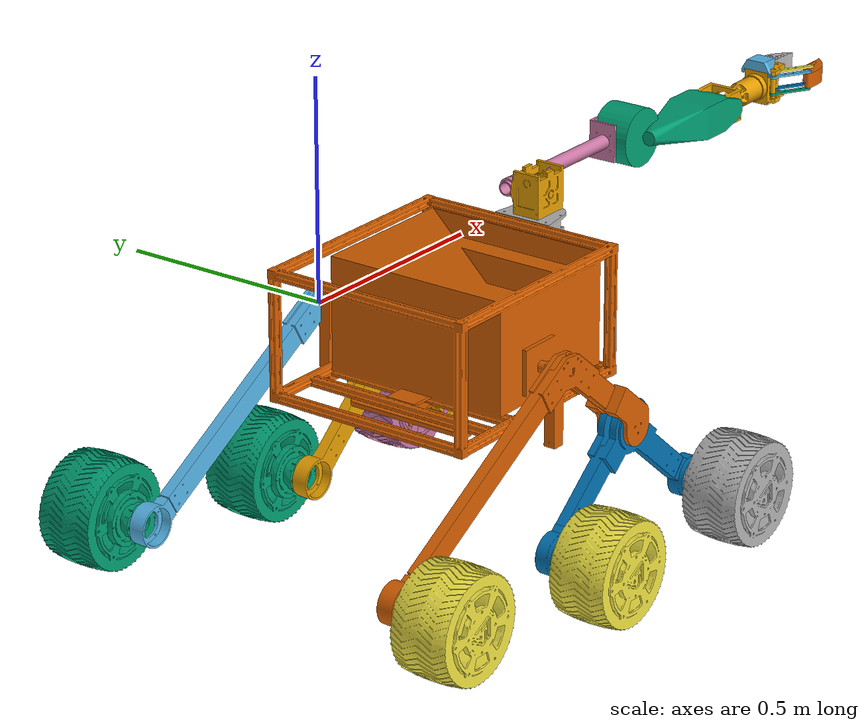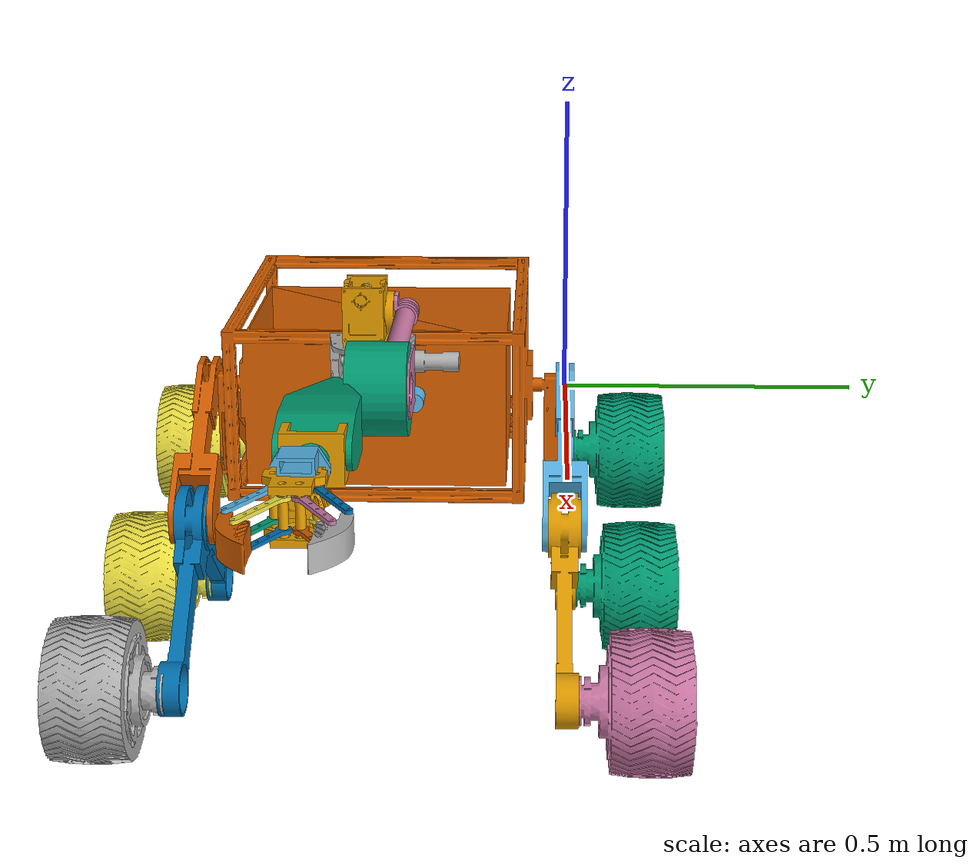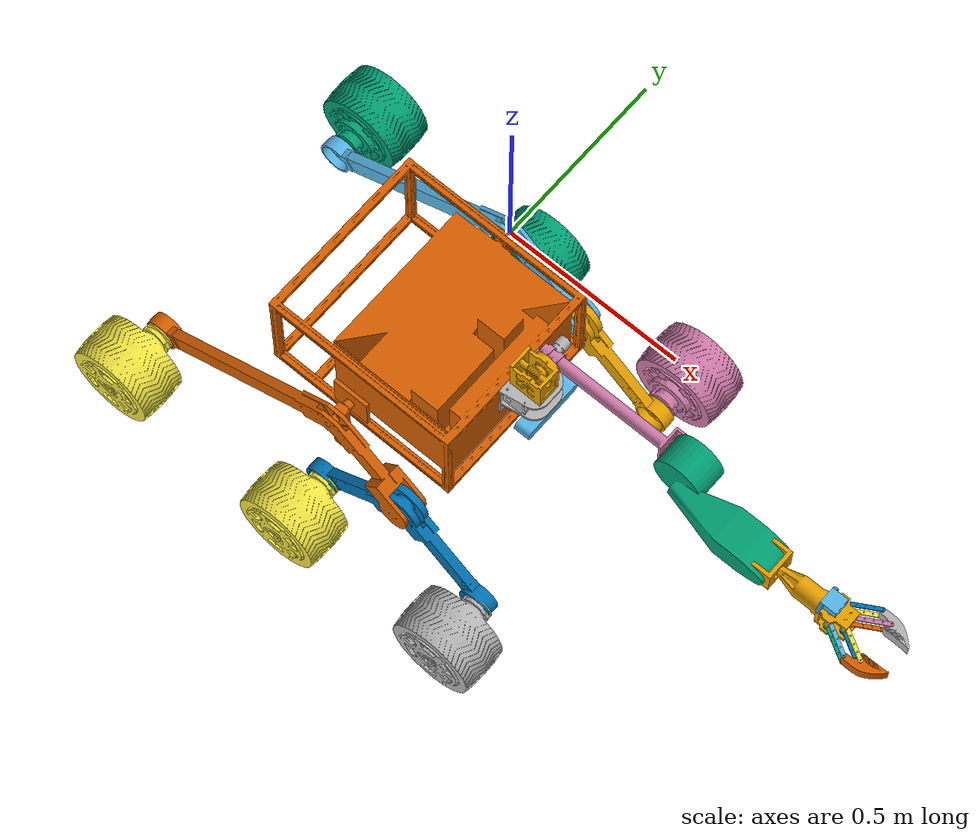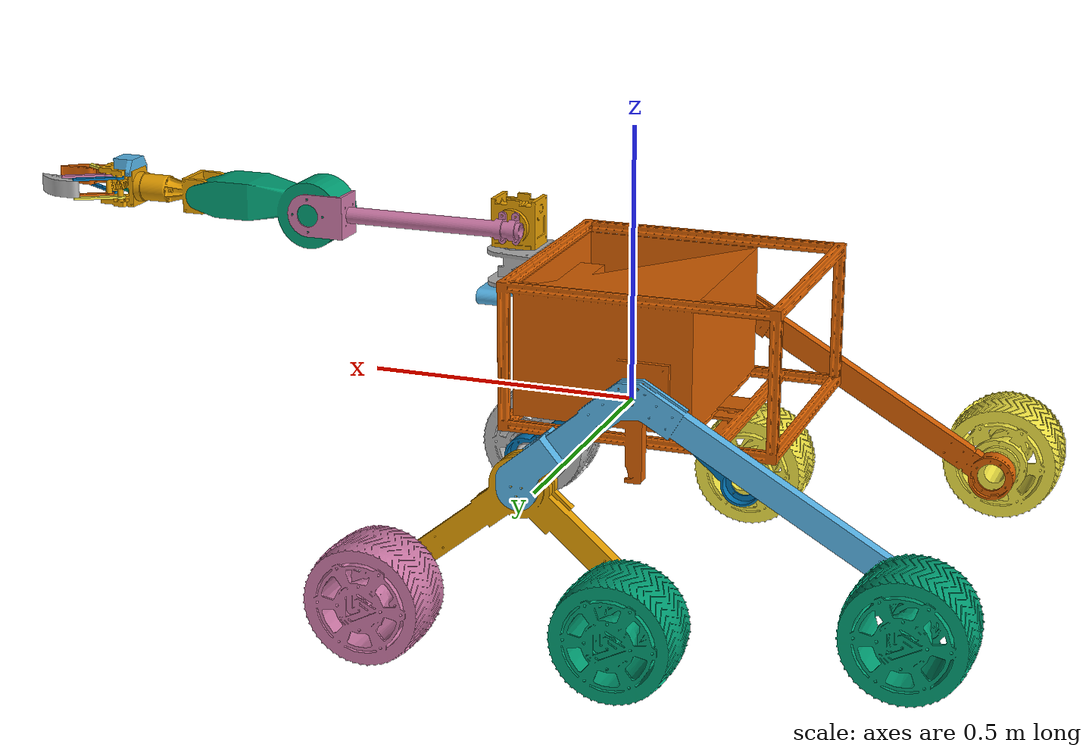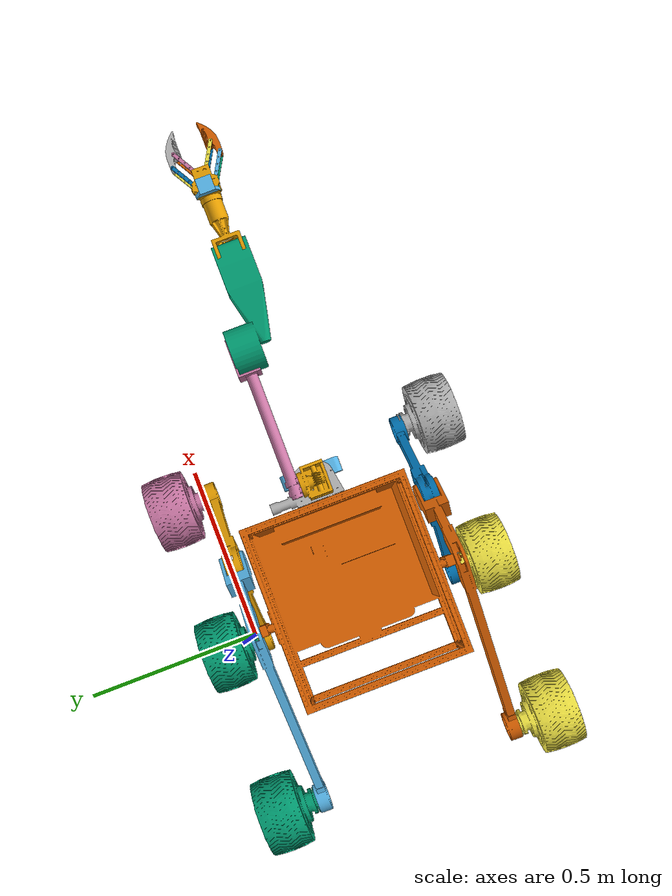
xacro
<?xml version="1.0"?>
<robot xmlns:xacro="http://www.ros.org/wiki/xacro" name="jade">

  <!-- The arm brings its own ZED on the stand, so rover_raw's placeholder chassis ZED is
       turned off (two zed_camera_link links make the URDF invalid). -->
  <xacro:arg name="chassis_zed" default="false" />

  <!-- 1. Global properties & color macros MUST come first -->
  <xacro:include filename="$(find jade_description)/urdf/common_properties.xacro" />

  <!-- 2. Include Sub-robot Xacro files -->
  <xacro:include filename="$(find rover_arm_description)/urdf/rover_arm.xacro" />
  <xacro:include filename="$(find rover_description)/urdf/rover_raw.xacro" />
  <xacro:include filename="$(find jade_description)/urdf/control.xacro" />

  <!-- Fixed Joint between Chassis and Arm Stand -->
  <joint name="stand_link_joint" type="fixed">
    <parent link="chassis_link"/>
    <child link="stand_link"/>
    <origin xyz="0.323 0 0.22" rpy="0 0 0"/>
  </joint>

  <!-- ==================== COLOR ASSIGNMENTS ==================== -->

  <!-- Arm Links -->
  <xacro:gazebo_shiny_aluminum link_name="base_link"/>
  <xacro:gazebo_shiny_aluminum link_name="stand_link"/>
  <xacro:gazebo_shiny_aluminum link_name="shoulder_link"/>
  <xacro:gazebo_shiny_aluminum link_name="elbow_link"/>
  <xacro:gazebo_off_black link_name="wrist_link"/>
  <xacro:gazebo_matte_white link_name="palm_link"/>

  <!-- Gripper & Camera Links -->
  <xacro:gazebo_shiny_aluminum link_name="left_finger_back_bottom_link"/>
  <xacro:gazebo_shiny_aluminum link_name="left_finger_back_top_link"/>
  <xacro:gazebo_shiny_aluminum link_name="left_finger_front_bottom_link"/>
  <xacro:gazebo_shiny_aluminum link_name="left_finger_front_top_link"/>
  <xacro:gazebo_shiny_aluminum link_name="right_finger_back_bottom_link"/>
  <xacro:gazebo_shiny_aluminum link_name="right_finger_back_top_link"/>
  <xacro:gazebo_shiny_aluminum link_name="right_finger_front_bottom_link"/>
  <xacro:gazebo_shiny_aluminum link_name="right_finger_front_top_link"/>
  <xacro:gazebo_off_black link_name="left_finger_link"/>
  <xacro:gazebo_off_black link_name="right_finger_link"/>
  <xacro:gazebo_off_black link_name="camera_mount_link"/>
  <xacro:gazebo_black_shiny link_name="zed_camera_link"/>

  <!-- Chassis & Rocker-Bogie Links -->
  <xacro:gazebo_shiny_aluminum link_name="chassis_link"/>
  <xacro:gazebo_shiny_aluminum link_name="left_bogie_link"/>
  <xacro:gazebo_shiny_aluminum link_name="right_bogie_link"/>
  <xacro:gazebo_shiny_aluminum link_name="left_rocker_link"/>
  <xacro:gazebo_shiny_aluminum link_name="right_rocker_link"/>

  <!-- Wheel Links -->
  <xacro:gazebo_off_black link_name="back_left_wheel_link"/>
  <xacro:gazebo_off_black link_name="middle_left_wheel_link"/>
  <xacro:gazebo_off_black link_name="front_left_wheel_link"/>
  <xacro:gazebo_off_black link_name="back_right_wheel_link"/>
  <xacro:gazebo_off_black link_name="middle_right_wheel_link"/>
  <xacro:gazebo_off_black link_name="front_right_wheel_link"/>

</robot>

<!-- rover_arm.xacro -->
<!--
  Robot: rover_arm_test_version
  Generated by: LinkForge v1.4.3
  https://github.com/arounamounchili/linkforge
  Date: 2026-08-16 16:50:29
-->
<robot xmlns:xacro="http://ros.org/xacro" name="rover_arm_test_version">
  <!-- Links -->
  <link name="base_link">
    <inertial>
      <origin xyz="-0.001028 0.001193 0.047499" rpy="0 0 1.570796" />
      <mass value="1" />
      <inertia ixx="0.001432" ixy="0" ixz="0" iyy="0.001278" iyz="0" izz="0.001206" />
    </inertial>
    <visual>
      <origin xyz="-0.001028 0.001193 0.047499" rpy="0 0 1.570796" />
      <geometry>
        <mesh filename="package://rover_arm_description/urdf/meshes/base_link_visual.obj" />
      </geometry>
    </visual>
    <collision>
      <origin xyz="-0.001028 0.001193 0.047499" rpy="0 0 1.570796" />
      <geometry>
        <box size="0.079456 0.090314 0.094999" />
      </geometry>
    </collision>
  </link>
  <link name="camera_mount_link">
    <inertial>
      <origin xyz="0.02205 -0.0356 0" rpy="0 0 0" />
      <mass value="0.05" />
      <inertia ixx="0.000023" ixy="0" ixz="0" iyy="0.00001" iyz="0" izz="0.000029" />
    </inertial>
    <visual>
      <origin xyz="0.02205 0 0.00615" rpy="0 0 0" />
      <geometry>
        <mesh filename="package://rover_arm_description/urdf/meshes/camera_mount_link_visual.obj" />
      </geometry>
    </visual>
    <collision>
      <origin xyz="0.02205 -0.0356 0" rpy="0 0 0" />
      <geometry>
        <box size="0.044099 0.071199 0.0225" />
      </geometry>
    </collision>
  </link>
  <link name="elbow_link">
    <inertial>
      <origin xyz="0.115487 -0.072527 -0.000852" rpy="0 0 1.570796" />
      <mass value="2.57" />
      <inertia ixx="0.428333" ixy="0" ixz="0" iyy="0.428333" iyz="0" izz="0.428333" />
    </inertial>
    <visual>
      <origin xyz="0.123458 -0.08171 -0.000357" rpy="0 0 1.570796" />
      <geometry>
        <mesh filename="package://rover_arm_description/urdf/meshes/elbow_link_visual.obj" />
      </geometry>
    </visual>
    <collision>
      <origin xyz="0.115487 -0.072527 -0.000852" rpy="0 0 1.570796" />
      <geometry>
        <mesh filename="package://rover_arm_description/urdf/meshes/elbow_link_collision.stl" />
      </geometry>
    </collision>
  </link>
  <link name="left_finger_back_bottom_link">
    <inertial>
      <origin xyz="0.036666 0.020224 0.0025" rpy="0 0 0" />
      <mass value="0.013" />
      <inertia ixx="0.002167" ixy="0" ixz="0" iyy="0.002167" iyz="0" izz="0.002167" />
    </inertial>
    <visual>
      <origin xyz="0.036666 0.020224 0.0025" rpy="0 0 0" />
      <geometry>
        <mesh filename="package://rover_arm_description/urdf/meshes/left_finger_back_bottom_link_visual.obj" />
      </geometry>
    </visual>
    <collision>
      <origin xyz="0.036666 0.020224 0.0025" rpy="0 0 0" />
      <geometry>
        <mesh filename="package://rover_arm_description/urdf/meshes/left_finger_back_bottom_link_collision.stl" />
      </geometry>
    </collision>
  </link>
  <link name="left_finger_back_top_link">
    <inertial>
      <origin xyz="0.036666 0.020224 0.0025" rpy="0 0 0" />
      <mass value="0.013" />
      <inertia ixx="0.002167" ixy="0" ixz="0" iyy="0.002167" iyz="0" izz="0.002167" />
    </inertial>
    <visual>
      <origin xyz="0.036666 0.020224 0.0025" rpy="0 0 0" />
      <geometry>
        <mesh filename="package://rover_arm_description/urdf/meshes/left_finger_back_top_link_visual.obj" />
      </geometry>
    </visual>
    <collision>
      <origin xyz="0.036666 0.020224 0.0025" rpy="0 0 0" />
      <geometry>
        <mesh filename="package://rover_arm_description/urdf/meshes/left_finger_back_top_link_collision.stl" />
      </geometry>
    </collision>
  </link>
  <link name="left_finger_front_bottom_link">
    <inertial>
      <origin xyz="0.036666 0.020224 0.0025" rpy="0 0 0" />
      <mass value="0.013" />
      <inertia ixx="0.002167" ixy="0" ixz="0" iyy="0.002167" iyz="0" izz="0.002167" />
    </inertial>
    <visual>
      <origin xyz="0.036662 0.020224 0.0025" rpy="0 0 0" />
      <geometry>
        <mesh filename="package://rover_arm_description/urdf/meshes/left_finger_front_bottom_link_visual.obj" />
      </geometry>
    </visual>
    <collision>
      <origin xyz="0.036666 0.020224 0.0025" rpy="0 0 0" />
      <geometry>
        <mesh filename="package://rover_arm_description/urdf/meshes/left_finger_front_bottom_link_collision.stl" />
      </geometry>
    </collision>
  </link>
  <link name="left_finger_front_top_link">
    <inertial>
      <origin xyz="0.036666 0.020224 0.0025" rpy="0 0 0" />
      <mass value="0.013" />
      <inertia ixx="0.002167" ixy="0" ixz="0" iyy="0.002167" iyz="0" izz="0.002167" />
    </inertial>
    <visual>
      <origin xyz="0.036662 0.020224 0.0025" rpy="0 0 0" />
      <geometry>
        <mesh filename="package://rover_arm_description/urdf/meshes/left_finger_front_top_link_visual.obj" />
      </geometry>
    </visual>
    <collision>
      <origin xyz="0.036666 0.020224 0.0025" rpy="0 0 0" />
      <geometry>
        <mesh filename="package://rover_arm_description/urdf/meshes/left_finger_front_top_link_collision.stl" />
      </geometry>
    </collision>
  </link>
  <link name="left_finger_link">
    <inertial>
      <origin xyz="0.046263 -0.014314 -0.0175" rpy="0 0 0" />
      <mass value="0.05" />
      <inertia ixx="0.008333" ixy="0" ixz="0" iyy="0.008333" iyz="0" izz="0.008333" />
    </inertial>
    <visual>
      <origin xyz="0.046263 -0.014314 -0.0175" rpy="0 0 0" />
      <geometry>
        <mesh filename="package://rover_arm_description/urdf/meshes/left_finger_link_visual.obj" />
      </geometry>
    </visual>
    <collision>
      <origin xyz="0.046263 -0.014314 -0.0175" rpy="0 0 0" />
      <geometry>
        <mesh filename="package://rover_arm_description/urdf/meshes/left_finger_link_collision.stl" />
      </geometry>
    </collision>
  </link>
  <link name="palm_link">
    <inertial>
      <origin xyz="0.039999 0.003006 0" rpy="0 0 0" />
      <mass value="0.453" />
      <inertia ixx="0.000454" ixy="0" ixz="0" iyy="0.000454" iyz="0" izz="0.000483" />
    </inertial>
    <visual>
      <origin xyz="0.039999 0.003006 0" rpy="0 0 0" />
      <geometry>
        <mesh filename="package://rover_arm_description/urdf/meshes/palm_link_visual.obj" />
      </geometry>
    </visual>
    <collision>
      <origin xyz="0.039999 0.003006 0" rpy="0 0 0" />
      <geometry>
        <box size="0.079999 0.079998 0.074999" />
      </geometry>
    </collision>
  </link>
  <link name="right_finger_back_bottom_link">
    <inertial>
      <origin xyz="0.036666 -0.020224 0.0025" rpy="0 0 0" />
      <mass value="0.013" />
      <inertia ixx="0.002167" ixy="0" ixz="0" iyy="0.002167" iyz="0" izz="0.002167" />
    </inertial>
    <visual>
      <origin xyz="0.036666 -0.020224 0.0025" rpy="0 0 0" />
      <geometry>
        <mesh filename="package://rover_arm_description/urdf/meshes/right_finger_back_bottom_link_visual.obj" />
      </geometry>
    </visual>
    <collision>
      <origin xyz="0.036666 -0.020224 0.0025" rpy="0 0 0" />
      <geometry>
        <mesh filename="package://rover_arm_description/urdf/meshes/right_finger_back_bottom_link_collision.stl" />
      </geometry>
    </collision>
  </link>
  <link name="right_finger_back_top_link">
    <inertial>
      <origin xyz="0.036666 -0.020224 0.0025" rpy="0 0 0" />
      <mass value="0.013" />
      <inertia ixx="0.002167" ixy="0" ixz="0" iyy="0.002167" iyz="0" izz="0.002167" />
    </inertial>
    <visual>
      <origin xyz="0.036666 -0.020224 0.0025" rpy="0 0 0" />
      <geometry>
        <mesh filename="package://rover_arm_description/urdf/meshes/right_finger_back_top_link_visual.obj" />
      </geometry>
    </visual>
    <collision>
      <origin xyz="0.036666 -0.020224 0.0025" rpy="0 0 0" />
      <geometry>
        <mesh filename="package://rover_arm_description/urdf/meshes/right_finger_back_top_link_collision.stl" />
      </geometry>
    </collision>
  </link>
  <link name="right_finger_front_bottom_link">
    <inertial>
      <origin xyz="0.036666 -0.020224 0.0025" rpy="0 0 0" />
      <mass value="0.013" />
      <inertia ixx="0.002167" ixy="0" ixz="0" iyy="0.002167" iyz="0" izz="0.002167" />
    </inertial>
    <visual>
      <origin xyz="0.036666 -0.020224 0.0025" rpy="0 0 0" />
      <geometry>
        <mesh filename="package://rover_arm_description/urdf/meshes/right_finger_front_bottom_link_visual.obj" />
      </geometry>
    </visual>
    <collision>
      <origin xyz="0.036666 -0.020224 0.0025" rpy="0 0 0" />
      <geometry>
        <mesh filename="package://rover_arm_description/urdf/meshes/right_finger_front_bottom_link_collision.stl" />
      </geometry>
    </collision>
  </link>
  <link name="right_finger_front_top_link">
    <inertial>
      <origin xyz="0.036666 -0.020224 0.0025" rpy="0 0 0" />
      <mass value="0.013" />
      <inertia ixx="0.002167" ixy="0" ixz="0" iyy="0.002167" iyz="0" izz="0.002167" />
    </inertial>
    <visual>
      <origin xyz="0.036666 -0.020224 0.0025" rpy="0 0 0" />
      <geometry>
        <mesh filename="package://rover_arm_description/urdf/meshes/right_finger_front_top_link_visual.obj" />
      </geometry>
    </visual>
    <collision>
      <origin xyz="0.036666 -0.020224 0.0025" rpy="0 0 0" />
      <geometry>
        <mesh filename="package://rover_arm_description/urdf/meshes/right_finger_front_top_link_collision.stl" />
      </geometry>
    </collision>
  </link>
  <link name="right_finger_link">
    <inertial>
      <origin xyz="0.046263 0.014314 -0.0175" rpy="0 0 0" />
      <mass value="0.05" />
      <inertia ixx="0.008333" ixy="0" ixz="0" iyy="0.008333" iyz="0" izz="0.008333" />
    </inertial>
    <visual>
      <origin xyz="0.046263 0.014314 -0.0175" rpy="0 0 0" />
      <geometry>
        <mesh filename="package://rover_arm_description/urdf/meshes/right_finger_link_visual.obj" />
      </geometry>
    </visual>
    <collision>
      <origin xyz="0.046263 0.014314 -0.0175" rpy="0 0 0" />
      <geometry>
        <mesh filename="package://rover_arm_description/urdf/meshes/right_finger_link_collision.stl" />
      </geometry>
    </collision>
  </link>
  <link name="shoulder_link">
    <inertial>
      <origin xyz="0.208545 0.020425 0.000072" rpy="0 0 0" />
      <mass value="0.5" />
      <inertia ixx="0.083333" ixy="0" ixz="0" iyy="0.083333" iyz="0" izz="0.083333" />
    </inertial>
    <visual>
      <origin xyz="0.208547 0.0205 0" rpy="0 0 1.570796" />
      <geometry>
        <mesh filename="package://rover_arm_description/urdf/meshes/shoulder_link_visual.obj" />
      </geometry>
    </visual>
    <collision>
      <origin xyz="0.208545 0.020425 0.000072" rpy="0 0 0" />
      <geometry>
        <mesh filename="package://rover_arm_description/urdf/meshes/shoulder_link_collision.stl" />
      </geometry>
    </collision>
  </link>
  <link name="stand_link">
    <inertial>
      <origin xyz="0.000553 0.035798 0.0135" rpy="0 0 1.570796" />
      <mass value="2" />
      <inertia ixx="0.004163" ixy="0" ixz="0" iyy="0.009635" iyz="0" izz="0.009077" />
    </inertial>
    <visual>
      <origin xyz="0.000553 0.035798 0.0135" rpy="0 0 1.570796" />
      <geometry>
        <mesh filename="package://rover_arm_description/urdf/meshes/stand_link_visual.obj" />
      </geometry>
    </visual>
    <collision>
      <origin xyz="0.000553 0.035798 0.0135" rpy="0 0 1.570796" />
      <geometry>
        <box size="0.20892 0.104 0.119" />
      </geometry>
    </collision>
  </link>
  <link name="wrist_link">
    <inertial>
      <origin xyz="0.065296 0 0.000008" rpy="0 0 0" />
      <mass value="0.45" />
      <inertia ixx="0.075" ixy="0" ixz="0" iyy="0.075" iyz="0" izz="0.075" />
    </inertial>
    <visual>
      <origin xyz="0.065296 0 0.000008" rpy="0 0 0" />
      <geometry>
        <mesh filename="package://rover_arm_description/urdf/meshes/wrist_link_visual.obj" />
      </geometry>
    </visual>
    <collision>
      <origin xyz="0.065296 0 0.000008" rpy="0 0 0" />
      <geometry>
        <mesh filename="package://rover_arm_description/urdf/meshes/wrist_link_collision.stl" />
      </geometry>
    </collision>
  </link>
  <link name="zed_camera_link">
    <inertial>
      <origin xyz="-0.02155 0 -0.01515" rpy="0 0 0" />
      <mass value="0.166" />
      <inertia ixx="0.000438" ixy="0" ixz="0" iyy="0.000038" iyz="0" izz="0.000451" />
    </inertial>
    <visual>
      <origin xyz="-0.02155 0 -0.01515" rpy="0 0 0" />
      <geometry>
        <mesh filename="package://rover_arm_description/urdf/meshes/zed_camera_link_visual.obj" />
      </geometry>
    </visual>
    <collision>
      <origin xyz="-0.02155 0 -0.01515" rpy="0 0 0" />
      <geometry>
        <box size="0.0431 0.1753 0.0303" />
      </geometry>
    </collision>
  </link>
  <!-- Joints. Arm efforts are the CAD motor torques (from the v1 export); 10 Nm everywhere
       was too weak to lift the arm in a physics engine that enforces effort limits. -->
  <joint name="base_link_joint" type="revolute">
    <origin xyz="-0.000162 -0.000166 0.073" rpy="0 0 0" />
    <parent link="stand_link" />
    <child link="base_link" />
    <axis xyz="0 0 1" />
    <limit effort="34.32" velocity="1" lower="-1.745329" upper="1.745329" />
    <!-- friction was 75 Nm: more than the joint's 34 Nm effort, so under DART the base could
         never turn. The real base is held by its motor/gearbox, not by joint friction. -->
    <dynamics friction="1.0" damping="1.0" />
  </joint>
  <joint name="camera_mount_link_joint" type="fixed">
    <origin xyz="0 0.003006 0.0375" rpy="0 0 0" />
    <parent link="palm_link" />
    <child link="camera_mount_link" />
  </joint>
  <joint name="elbow_link_joint" type="revolute">
    <origin xyz="0.404295 0.046999 0" rpy="0 0 0" />
    <parent link="shoulder_link" />
    <child link="elbow_link" />
    <axis xyz="0 1 0" />
    <limit effort="123.56" velocity="1" lower="-3.316126" upper="3.316126" />
  </joint>
  <joint name="left_finger_back_bottom_link_joint" type="revolute">
    <origin xyz="0.031938 0.024947 -0.0225" rpy="0 0 0" />
    <parent link="palm_link" />
    <child link="left_finger_back_bottom_link" />
    <axis xyz="0 0 1" />
    <limit effort="10" velocity="1" lower="-3.141593" upper="3.141593" />
    <mimic joint="right_finger_back_top_link_joint" multiplier="-1" />
  </joint>
  <joint name="left_finger_back_top_link_joint" type="revolute">
    <origin xyz="0.031938 0.024947 0.0175" rpy="0 0 0" />
    <parent link="palm_link" />
    <child link="left_finger_back_top_link" />
    <axis xyz="0 0 1" />
    <limit effort="10" velocity="1" lower="-3.141593" upper="3.141593" />
    <mimic joint="right_finger_back_top_link_joint" multiplier="-1" />
  </joint>
  <joint name="left_finger_front_bottom_link_joint" type="revolute">
    <origin xyz="0.066942 0.009947 -0.0225" rpy="0 0 0" />
    <parent link="palm_link" />
    <child link="left_finger_front_bottom_link" />
    <axis xyz="0 0 1" />
    <limit effort="10" velocity="1" lower="-3.141593" upper="3.141593" />
    <mimic joint="right_finger_back_top_link_joint" multiplier="-1" />
  </joint>
  <joint name="left_finger_front_top_link_joint" type="revolute">
    <origin xyz="0.066942 0.009947 0.0175" rpy="0 0 0" />
    <parent link="palm_link" />
    <child link="left_finger_front_top_link" />
    <axis xyz="0 0 1" />
    <limit effort="10" velocity="1" lower="-3.141593" upper="3.141593" />
    <mimic joint="right_finger_back_top_link_joint" multiplier="-1" />
  </joint>
  <joint name="left_finger_link_joint" type="revolute">
    <origin xyz="0.07789 0.04497 0" rpy="0 0 0" />
    <parent link="left_finger_back_top_link" />
    <child link="left_finger_link" />
    <axis xyz="0 0 1" />
    <limit effort="10" velocity="1" lower="-3.141593" upper="3.141593" />
    <mimic joint="right_finger_back_top_link_joint" />
  </joint>
  <joint name="palm_link_joint" type="revolute">
    <origin xyz="0.163045 -0.000975 0.000003" rpy="0 0 0" />
    <parent link="wrist_link" />
    <child link="palm_link" />
    <axis xyz="1 0 0" />
    <limit effort="10" velocity="1" lower="-1.745329" upper="1.745329" />
  </joint>
  <joint name="right_finger_back_bottom_link_joint" type="revolute">
    <origin xyz="0.03232 -0.024728 0.01734" rpy="0 0 0" />
    <parent link="palm_link" />
    <child link="right_finger_back_bottom_link" />
    <axis xyz="0 0 1" />
    <limit effort="10" velocity="1" lower="-3.141593" upper="3.141593" />
    <mimic joint="right_finger_back_top_link_joint" />
  </joint>
  <joint name="right_finger_back_top_link_joint" type="revolute">
    <origin xyz="0.03232 -0.024728 -0.02266" rpy="0 0 0" />
    <parent link="palm_link" />
    <child link="right_finger_back_top_link" />
    <axis xyz="0 0 1" />
    <limit effort="10" velocity="1" lower="-0.785398" upper="0.523598" />
  </joint>
  <joint name="right_finger_front_bottom_link_joint" type="revolute">
    <origin xyz="0.06732 -0.009728 0.01734" rpy="0 0 0" />
    <parent link="palm_link" />
    <child link="right_finger_front_bottom_link" />
    <axis xyz="0 0 1" />
    <limit effort="10" velocity="1" lower="-3.141593" upper="3.141593" />
    <mimic joint="right_finger_back_top_link_joint" />
  </joint>
  <joint name="right_finger_front_top_link_joint" type="revolute">
    <origin xyz="0.06732 -0.009728 -0.02266" rpy="0 0 0" />
    <parent link="palm_link" />
    <child link="right_finger_front_top_link" />
    <axis xyz="0 0 1" />
    <limit effort="10" velocity="1" lower="-3.141593" upper="3.141593" />
    <mimic joint="right_finger_back_top_link_joint" />
  </joint>
  <joint name="right_finger_link_joint" type="revolute">
    <origin xyz="0.07789 -0.04497 -0.000001" rpy="0 0 0" />
    <parent link="right_finger_back_bottom_link" />
    <child link="right_finger_link" />
    <axis xyz="0 0 1" />
    <limit effort="10" velocity="1" lower="-3.141593" upper="3.141593" />
    <mimic joint="right_finger_back_top_link_joint" multiplier="-1" />
  </joint>
  <joint name="shoulder_link_joint" type="revolute">
    <origin xyz="0.000139 0.040749 0.044051" rpy="0 0 0" />
    <parent link="base_link" />
    <child link="shoulder_link" />
    <axis xyz="0 1 0" />
    <limit effort="137.3" velocity="1" lower="-1.745329" upper="0.567232" />
  </joint>
  <joint name="wrist_link_joint" type="revolute">
    <origin xyz="0.266996 -0.096997 -0.000596" rpy="0 0 0" />
    <parent link="elbow_link" />
    <child link="wrist_link" />
    <axis xyz="0 1 0" />
    <limit effort="27.46" velocity="1" lower="-1.745329" upper="1.745329" />
  </joint>
  <joint name="zed_camera_link_joint" type="fixed">
    <origin xyz="0.052553 -0.000162 0" rpy="0 0 0" />
    <parent link="stand_link" />
    <child link="zed_camera_link" />
  </joint>
  <!-- Sensors -->
  <gazebo reference="camera_mount_link">
    <sensor name="camera_mount_link_sensor" type="camera">
      <always_on>true</always_on>
      <update_rate>30</update_rate>
      <visualize>false</visualize>
      <topic>/gripper/camera</topic>
      <pose>0 0 0.01115 0 0 0</pose>
      <camera>
        <horizontal_fov>1.047</horizontal_fov>
        <image>
          <width>640</width>
          <height>480</height>
          <format>R8G8B8</format>
        </image>
        <clip>
          <near>0.1</near>
          <far>100</far>
        </clip>
      </camera>
    </sensor>
  </gazebo>

  <gazebo reference="zed_camera_link">
    <sensor name="zed_camera_link_sensor" type="rgbd">
      <always_on>true</always_on>
      <update_rate>15.0</update_rate>
      <topic>/zed/zed_node/image</topic>
      <gz_frame_id>zed_camera_link</gz_frame_id>
      <camera>
        <!-- 110 degree horizontal FOV in radians -->
        <horizontal_fov>1.91986</horizontal_fov>
        <image>
          <width>1280</width>
          <height>720</height>
          <format>R8G8B8</format>
        </image>
        <clip>
          <near>0.3</near>
          <far>20.0</far>
        </clip>
        <noise>
          <type>gaussian</type>
          <mean>0.0</mean>
          <stddev>0.007</stddev>
        </noise>
      </camera>
    </sensor>
  </gazebo>
</robot>

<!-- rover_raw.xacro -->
<!--
  Robot: rover_test_version
  Generated by: LinkForge v1.4.3
  https://github.com/arounamounchili/linkforge
  Date: 2026-08-08 12:18:26
-->
<robot xmlns:xacro="http://ros.org/xacro" name="rover_test_version">
  <xacro:arg name="rocker_friction" default="0.0" />
  <xacro:arg name="chassis_zed" default="true" />
  <!-- Links -->
  <link name="back_left_wheel_link">
    <inertial>
      <origin xyz="-0.000784 0.092012 -0.001876" rpy="-1.570796 -0.000001 0.000001" />
      <mass value="3" />
      <inertia ixx="0.019211" ixy="0" ixz="0" iyy="0.019211" iyz="0" izz="0.02149" />
    </inertial>
    <visual>
      <origin xyz="-0.000784 0.092012 -0.001876" rpy="-1.570796 -0.000001 0.000001" />
      <geometry>
        <mesh filename="package://rover_description/urdf/meshes/back_left_wheel_link_visual.obj" />
      </geometry>
    </visual>
    <collision>
      <origin xyz="-0.000784 0.092012 -0.001876" rpy="-1.570796 -0.000001 0.000001" />
      <geometry>
        <cylinder radius="0.119695" length="0.184024" />
      </geometry>
    </collision>
  </link>
  <link name="back_right_wheel_link">
    <inertial>
      <origin xyz="-0.000784 -0.092012 0.001876" rpy="1.570796 0 0" />
      <mass value="3" />
      <inertia ixx="0.019211" ixy="0" ixz="0" iyy="0.019211" iyz="0" izz="0.02149" />
    </inertial>
    <visual>
      <origin xyz="-0.000784 -0.092012 0.001876" rpy="1.570796 0 0" />
      <geometry>
        <mesh filename="package://rover_description/urdf/meshes/back_right_wheel_link_visual.obj" />
      </geometry>
    </visual>
    <collision>
      <origin xyz="-0.000784 -0.092012 0.001876" rpy="1.570796 0 0" />
      <geometry>
        <cylinder radius="0.119695" length="0.184024" />
      </geometry>
    </collision>
  </link>
  <link name="chassis_footprint">
    <inertial>
      <mass value="1" />
      <inertia ixx="0" ixy="0" ixz="0" iyy="0" iyz="0" izz="0" />
    </inertial>
  </link>
  <link name="chassis_link">
    <inertial>
      <origin xyz="0 0 0.120509" rpy="0 0 0" />
      <mass value="10" />
      <inertia ixx="0.299083" ixy="0" ixz="0" iyy="0.33375" iyz="0" izz="0.451333" />
    </inertial>
    <visual>
      <origin xyz="0 0 0.120509" rpy="0 0 0" />
      <geometry>
        <mesh filename="package://rover_description/urdf/meshes/chassis_link_visual.obj" />
      </geometry>
    </visual>
    <collision>
      <origin xyz="0 0 0.120509" rpy="0 0 0" />
      <geometry>
        <box size="0.54 0.5 0.33" />
      </geometry>
    </collision>
  </link>
  <link name="front_left_wheel_link">
    <inertial>
      <origin xyz="-0.000784 0.092012 -0.001876" rpy="-1.570796 0 0" />
      <mass value="3" />
      <inertia ixx="0.019211" ixy="0" ixz="0" iyy="0.019211" iyz="0" izz="0.02149" />
    </inertial>
    <visual>
      <origin xyz="-0.000784 0.092012 -0.001876" rpy="-1.570796 0 0" />
      <geometry>
        <mesh filename="package://rover_description/urdf/meshes/front_left_wheel_link_visual.obj" />
      </geometry>
    </visual>
    <collision>
      <origin xyz="-0.000784 0.092012 -0.001876" rpy="-1.570796 0 0" />
      <geometry>
        <cylinder radius="0.119695" length="0.184024" />
      </geometry>
    </collision>
  </link>
  <link name="front_right_wheel_link">
    <inertial>
      <origin xyz="-0.000784 -0.092012 0.001876" rpy="1.570796 0 0" />
      <mass value="3" />
      <inertia ixx="0.019211" ixy="0" ixz="0" iyy="0.019211" iyz="0" izz="0.02149" />
    </inertial>
    <visual>
      <origin xyz="-0.000784 -0.092012 0.001876" rpy="1.570796 0 0" />
      <geometry>
        <mesh filename="package://rover_description/urdf/meshes/front_right_wheel_link_visual.obj" />
      </geometry>
    </visual>
    <collision>
      <origin xyz="-0.000784 -0.092012 0.001876" rpy="1.570796 0 0" />
      <geometry>
        <cylinder radius="0.119695" length="0.184024" />
      </geometry>
    </collision>
  </link>
  <link name="left_bogie_link">
    <inertial>
      <origin xyz="0.001424 0.0005 -0.093084" rpy="0 0 0" />
      <mass value="5" />
      <inertia ixx="0.833333" ixy="0" ixz="0" iyy="0.833333" iyz="0" izz="0.833333" />
    </inertial>
    <visual>
      <origin xyz="0.004906 0 -0.09396" rpy="1.570796 0 0" />
      <geometry>
        <mesh filename="package://rover_description/urdf/meshes/left_bogie_link_visual.obj" />
      </geometry>
    </visual>
    <collision>
      <origin xyz="0.001424 0.0005 -0.093084" rpy="0 0 0" />
      <geometry>
        <mesh filename="package://rover_description/urdf/meshes/left_bogie_link_collision.stl" />
      </geometry>
    </collision>
  </link>
  <link name="left_rocker_link">
    <inertial>
      <origin xyz="-0.180935 -0.001197 -0.156518" rpy="0 0 0" />
      <mass value="4" />
      <inertia ixx="0.666667" ixy="0" ixz="0" iyy="0.666667" iyz="0" izz="0.666667" />
    </inertial>
    <visual>
      <origin xyz="-0.17271 0 -0.157656" rpy="0 0 0" />
      <geometry>
        <mesh filename="package://rover_description/urdf/meshes/left_rocker_link_visual.obj" />
      </geometry>
    </visual>
    <collision>
      <origin xyz="-0.180935 -0.001197 -0.156518" rpy="0 0 0" />
      <geometry>
        <mesh filename="package://rover_description/urdf/meshes/left_rocker_link_collision.stl" />
      </geometry>
    </collision>
  </link>
  <link name="middle_left_wheel_link">
    <inertial>
      <origin xyz="-0.000784 0.092012 -0.001876" rpy="-1.570796 0 0.000001" />
      <mass value="3" />
      <inertia ixx="0.019211" ixy="0" ixz="0" iyy="0.019211" iyz="0" izz="0.02149" />
    </inertial>
    <visual>
      <origin xyz="-0.000784 0.092012 -0.001876" rpy="-1.570796 0 0.000001" />
      <geometry>
        <mesh filename="package://rover_description/urdf/meshes/middle_left_wheel_link_visual.obj" />
      </geometry>
    </visual>
    <collision>
      <origin xyz="-0.000784 0.092012 -0.001876" rpy="-1.570796 0 0.000001" />
      <geometry>
        <cylinder radius="0.119695" length="0.184024" />
      </geometry>
    </collision>
  </link>
  <link name="middle_right_wheel_link">
    <inertial>
      <origin xyz="-0.000784 -0.092012 0.001876" rpy="1.570796 0 0" />
      <mass value="3" />
      <inertia ixx="0.019211" ixy="0" ixz="0" iyy="0.019211" iyz="0" izz="0.02149" />
    </inertial>
    <visual>
      <origin xyz="-0.000784 -0.092012 0.001876" rpy="1.570796 0 0" />
      <geometry>
        <mesh filename="package://rover_description/urdf/meshes/middle_right_wheel_link_visual.obj" />
      </geometry>
    </visual>
    <collision>
      <origin xyz="-0.000784 -0.092012 0.001876" rpy="1.570796 0 0" />
      <geometry>
        <cylinder radius="0.119695" length="0.184024" />
      </geometry>
    </collision>
  </link>
  <link name="right_bogie_link">
    <inertial>
      <origin xyz="-0.00177 -0.0005 -0.093474" rpy="-1.570799 3.138344 0" />
      <mass value="5" />
      <inertia ixx="0.833333" ixy="0" ixz="0" iyy="0.833333" iyz="0" izz="0.833333" />
    </inertial>
    <visual>
      <origin xyz="-0.004907 0 -0.09396" rpy="1.570794 0 -3.141593" />
      <geometry>
        <mesh filename="package://rover_description/urdf/meshes/right_bogie_link_visual.obj" />
      </geometry>
    </visual>
    <collision>
      <origin xyz="-0.00177 -0.0005 -0.093474" rpy="-1.570799 3.138344 0" />
      <geometry>
        <mesh filename="package://rover_description/urdf/meshes/right_bogie_link_collision.stl" />
      </geometry>
    </collision>
  </link>
  <link name="right_rocker_link">
    <inertial>
      <origin xyz="-0.180935 -0.001197 -0.156518" rpy="0 0 0" />
      <mass value="4" />
      <inertia ixx="0.666667" ixy="0" ixz="0" iyy="0.666667" iyz="0" izz="0.666667" />
    </inertial>
    <visual>
      <origin xyz="-0.17271 0 -0.157656" rpy="0 0 0" />
      <geometry>
        <mesh filename="package://rover_description/urdf/meshes/right_rocker_link_visual.obj" />
      </geometry>
    </visual>
    <collision>
      <origin xyz="-0.180935 -0.001197 -0.156518" rpy="0 0 0" />
      <geometry>
        <mesh filename="package://rover_description/urdf/meshes/right_rocker_link_collision.stl" />
      </geometry>
    </collision>
  </link>
  <xacro:if value="$(arg chassis_zed)">
  <link name="zed_camera_link">
    <inertial>
      <origin xyz="0.02155 0 0" rpy="0 -1.570796 0" />
      <mass value="0.229" />
      <inertia ixx="0.000622" ixy="0" ixz="0" iyy="0.000053" iyz="0" izz="0.000604" />
    </inertial>
    <visual>
      <origin xyz="0.02155 0 0" rpy="0 0 0" />
      <geometry>
        <mesh filename="package://rover_arm_description/urdf/meshes/zed_camera_link_visual.stl" />
      </geometry>
    </visual>
    <collision>
      <origin xyz="0.02155 0 0" rpy="0 -1.570796 0" />
      <geometry>
        <box size="0.0303 0.1753 0.0431" />
      </geometry>
    </collision>
  </link>
  </xacro:if>
  <!-- Joints -->
  <joint name="back_left_wheel_link_joint" type="continuous">
    <origin xyz="-0.550766 0.0235 -0.305642" rpy="0 0 0" />
    <parent link="left_rocker_link" />
    <child link="back_left_wheel_link" />
    <axis xyz="0 1 0" />
    <limit effort="12" velocity="15" lower="0" upper="0" />
  </joint>
  <joint name="back_right_wheel_link_joint" type="continuous">
    <origin xyz="-0.55172 -0.0135 -0.306193" rpy="-0.000001 0 0" />
    <parent link="right_rocker_link" />
    <child link="back_right_wheel_link" />
    <axis xyz="0 1 0" />
    <limit effort="12" velocity="15" lower="0" upper="0" />
  </joint>
  <joint name="chassis_link_joint" type="fixed">
    <origin xyz="0.017593 -0.313117 -0.118479" rpy="0 0 0" />
    <parent link="chassis_footprint" />
    <child link="chassis_link" />
  </joint>
  <joint name="front_left_wheel_link_joint" type="continuous">
    <origin xyz="0.246102 0.0235 -0.202872" rpy="0.000001 0 0" />
    <parent link="left_bogie_link" />
    <child link="front_left_wheel_link" />
    <axis xyz="0 1 0" />
    <limit effort="12" velocity="15" lower="0" upper="0" />
  </joint>
  <joint name="front_right_wheel_link_joint" type="continuous">
    <origin xyz="0.247131 -0.0135 -0.201737" rpy="0 0 0" />
    <parent link="right_bogie_link" />
    <child link="front_right_wheel_link" />
    <axis xyz="0 1 0" />
    <limit effort="12" velocity="15" lower="0" upper="0" />
  </joint>
  <joint name="left_bogie_link_joint" type="revolute">
    <origin xyz="0.210291 0 -0.190873" rpy="-0.000001 0 0" />
    <parent link="left_rocker_link" />
    <child link="left_bogie_link" />
    <axis xyz="0 1 0" />
    <limit effort="10" velocity="1" lower="-0.5236" upper="0.5236" />
  </joint>
  <joint name="left_rocker_link_joint" type="revolute">
    <origin xyz="-0.017593 0.313117 0.118479" rpy="0 0 0" />
    <parent link="chassis_link" />
    <child link="left_rocker_link" />
    <axis xyz="0 1 0" />
    <limit effort="10" velocity="1" lower="-1.570795" upper="1.570795" />
    <dynamics friction="$(arg rocker_friction)" />
  </joint>
  <joint name="middle_left_wheel_link_joint" type="continuous">
    <origin xyz="-0.236289 0.0235 -0.201885" rpy="0.000001 -0.000001 -0.000001" />
    <parent link="left_bogie_link" />
    <child link="middle_left_wheel_link" />
    <axis xyz="0 1 0" />
    <limit effort="12" velocity="15" lower="0" upper="0" />
  </joint>
  <joint name="middle_right_wheel_link_joint" type="continuous">
    <origin xyz="-0.236289 -0.0135 -0.201885" rpy="0 0 0" />
    <parent link="right_bogie_link" />
    <child link="middle_right_wheel_link" />
    <axis xyz="0 1 0" />
    <limit effort="12" velocity="15" lower="0" upper="0" />
  </joint>
  <joint name="right_bogie_link_joint" type="revolute">
    <origin xyz="0.210291 0 -0.190873" rpy="-0.000001 0 0" />
    <parent link="right_rocker_link" />
    <child link="right_bogie_link" />
    <axis xyz="0 1 0" />
    <limit effort="10" velocity="1" lower="-0.5236" upper="0.5236" />
  </joint>
  <joint name="right_rocker_link_joint" type="revolute">
    <origin xyz="-0.018794 -0.317419 0.125316" rpy="0 0 0" />
    <parent link="chassis_link" />
    <child link="right_rocker_link" />
    <axis xyz="0 1 0" />
    <limit effort="10" velocity="1" lower="-3.141593" upper="3.141593" />
    <dynamics friction="$(arg rocker_friction)" />
  </joint>
  <xacro:if value="$(arg chassis_zed)">
  <joint name="zed_camera_link_joint" type="fixed">
    <origin xyz="0.27 0 0.30" rpy="0 0 0" />
    <parent link="chassis_link" />
    <child link="zed_camera_link" />
  </joint>
  </xacro:if>
</robot>
